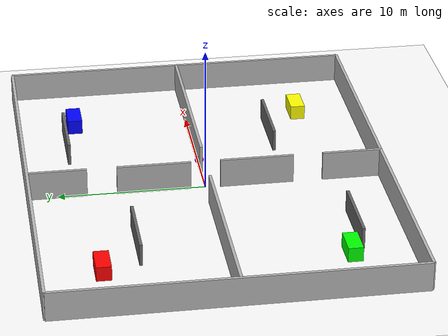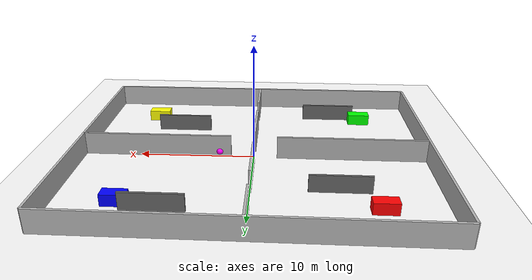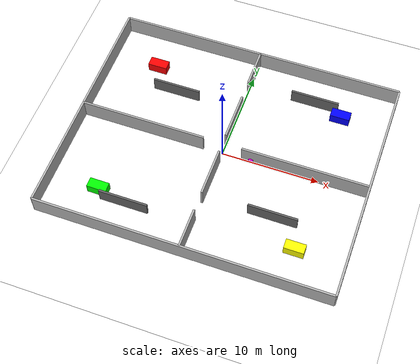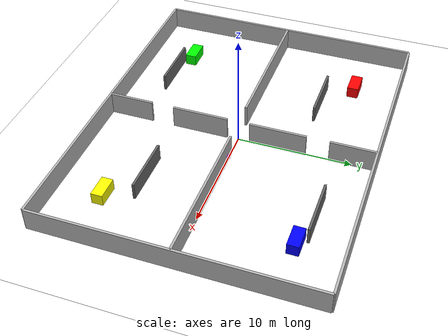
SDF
<sdf version="1.7">
 <world name="warehouse_world">
  <physics name="1ms" type="ignored">
   <max_step_size>0.005</max_step_size>
   <real_time_factor>1.0</real_time_factor>
  </physics>
  <plugin filename="gz-sim-physics-system" name="gz::sim::systems::Physics"/>
  <plugin filename="gz-sim-sensors-system" name="gz::sim::systems::Sensors">
   <render_engine>ogre2</render_engine>
  </plugin>
  <plugin filename="gz-sim-scene-broadcaster-system" name="gz::sim::systems::SceneBroadcaster"/>
  <plugin filename="gz-sim-user-commands-system" name="gz::sim::systems::UserCommands"/>
  <plugin filename="gz-sim-imu-system" name="gz::sim::systems::Imu"/>
  <include><uri>model://goal</uri><name>goal</name><pose>3 0 0.5 0 0 0</pose></include>
  <model name="white_floor">
   <static>true</static>
   <link name="floor_link">
    <collision name="collision">
     <geometry><plane><normal>0 0 1</normal><size>40 40</size></plane></geometry>
    </collision>
    <visual name="visual">
     <geometry><plane><normal>0 0 1</normal><size>40 40</size></plane></geometry>
     <material><ambient>1 1 1 1</ambient><diffuse>1 1 1 1</diffuse><specular>0.1 0.1 0.1 1</specular></material>
    </visual>
   </link>
  </model>
  <model name="wall_north">
   <static>true</static>
   <pose>0 12 1 0 0 0</pose>
   <link name="link">
    <collision name="collision"><geometry><box><size>30 0.2 2</size></box></geometry></collision>
    <visual name="visual"><geometry><box><size>30 0.2 2</size></box></geometry></visual>
   </link>
  </model>
  <model name="wall_south">
   <static>true</static>
   <pose>0 -12 1 0 0 0</pose>
   <link name="link">
    <collision name="collision"><geometry><box><size>30 0.2 2</size></box></geometry></collision>
    <visual name="visual"><geometry><box><size>30 0.2 2</size></box></geometry></visual>
   </link>
  </model>
  <model name="wall_east">
   <static>true</static>
   <pose>15 0 1 0 0 0</pose>
   <link name="link">
    <collision name="collision"><geometry><box><size>0.2 24 2</size></box></geometry></collision>
    <visual name="visual"><geometry><box><size>0.2 24 2</size></box></geometry></visual>
   </link>
  </model>
  <model name="wall_west">
   <static>true</static>
   <pose>-15 0 1 0 0 0</pose>
   <link name="link">
    <collision name="collision"><geometry><box><size>0.2 24 2</size></box></geometry></collision>
    <visual name="visual"><geometry><box><size>0.2 24 2</size></box></geometry></visual>
   </link>
  </model>
  <model name="mid_wall_left">
   <static>true</static>
   <pose>-8.5 0 1 0 0 0</pose>
   <link name="link">
    <collision name="collision"><geometry><box><size>13 0.2 2</size></box></geometry></collision>
    <visual name="visual">
     <geometry><box><size>13 0.2 2</size></box></geometry>
     <material><ambient>0.7 0.7 0.7 1</ambient><diffuse>0.7 0.7 0.7 1</diffuse></material>
    </visual>
   </link>
  </model>
  <model name="mid_wall_right">
   <static>true</static>
   <pose>8.5 0 1 0 0 0</pose>
   <link name="link">
    <collision name="collision"><geometry><box><size>13 0.2 2</size></box></geometry></collision>
    <visual name="visual">
     <geometry><box><size>13 0.2 2</size></box></geometry>
     <material><ambient>0.7 0.7 0.7 1</ambient><diffuse>0.7 0.7 0.7 1</diffuse></material>
    </visual>
   </link>
  </model>
  <model name="mid_vertical_top">
   <static>true</static>
   <pose>0 10 1 0 0 0</pose>
   <link name="link">
    <collision name="collision"><geometry><box><size>0.2 4 2</size></box></geometry></collision>
    <visual name="visual">
     <geometry><box><size>0.2 4 2</size></box></geometry>
     <material><ambient>0.7 0.7 0.7 1</ambient><diffuse>0.7 0.7 0.7 1</diffuse></material>
    </visual>
   </link>
  </model>
  <model name="mid_vertical_upper">
   <static>true</static>
   <pose>0 3.5 1 0 0 0</pose>
   <link name="link">
    <collision name="collision"><geometry><box><size>0.2 5 2</size></box></geometry></collision>
    <visual name="visual">
     <geometry><box><size>0.2 5 2</size></box></geometry>
     <material><ambient>0.7 0.7 0.7 1</ambient><diffuse>0.7 0.7 0.7 1</diffuse></material>
    </visual>
   </link>
  </model>
  <model name="mid_vertical_lower">
   <static>true</static>
   <pose>0 -3.5 1 0 0 0</pose>
   <link name="link">
    <collision name="collision"><geometry><box><size>0.2 5 2</size></box></geometry></collision>
    <visual name="visual">
     <geometry><box><size>0.2 5 2</size></box></geometry>
     <material><ambient>0.7 0.7 0.7 1</ambient><diffuse>0.7 0.7 0.7 1</diffuse></material>
    </visual>
   </link>
  </model>
  <model name="mid_vertical_bottom">
   <static>true</static>
   <pose>0 -10 1 0 0 0</pose>
   <link name="link">
    <collision name="collision"><geometry><box><size>0.2 4 2</size></box></geometry></collision>
    <visual name="visual">
     <geometry><box><size>0.2 4 2</size></box></geometry>
     <material><ambient>0.7 0.7 0.7 1</ambient><diffuse>0.7 0.7 0.7 1</diffuse></material>
    </visual>
   </link>
  </model>
  <model name="blocker_tl">
   <static>true</static>
   <pose>-7 5.5 0.75 0 0 0</pose>
   <link name="link">
    <collision name="collision"><geometry><box><size>5 0.2 1.5</size></box></geometry></collision>
    <visual name="visual">
     <geometry><box><size>5 0.2 1.5</size></box></geometry>
     <material><ambient>0.4 0.4 0.4 1</ambient><diffuse>0.4 0.4 0.4 1</diffuse></material>
    </visual>
   </link>
  </model>
  <model name="blocker_tr">
   <static>true</static>
   <pose>7 8.8 0.75 0 0 0</pose>
   <link name="link">
    <collision name="collision"><geometry><box><size>5 0.2 1.5</size></box></geometry></collision>
    <visual name="visual">
     <geometry><box><size>5 0.2 1.5</size></box></geometry>
     <material><ambient>0.4 0.4 0.4 1</ambient><diffuse>0.4 0.4 0.4 1</diffuse></material>
    </visual>
   </link>
  </model>
  <model name="blocker_bl">
   <static>true</static>
   <pose>-7 -8.8 0.75 0 0 0</pose>
   <link name="link">
    <collision name="collision"><geometry><box><size>5 0.2 1.5</size></box></geometry></collision>
    <visual name="visual">
     <geometry><box><size>5 0.2 1.5</size></box></geometry>
     <material><ambient>0.4 0.4 0.4 1</ambient><diffuse>0.4 0.4 0.4 1</diffuse></material>
    </visual>
   </link>
  </model>
  <model name="blocker_br">
   <static>true</static>
   <pose>7 -5.5 0.75 0 0 0</pose>
   <link name="link">
    <collision name="collision"><geometry><box><size>5 0.2 1.5</size></box></geometry></collision>
    <visual name="visual">
     <geometry><box><size>5 0.2 1.5</size></box></geometry>
     <material><ambient>0.4 0.4 0.4 1</ambient><diffuse>0.4 0.4 0.4 1</diffuse></material>
    </visual>
   </link>
  </model>
  <model name="shelf_red">
   <static>true</static>
   <pose>-10 8 0.5 0 0 0</pose>
   <link name="link">
    <collision name="collision"><geometry><box><size>2 1 1</size></box></geometry></collision>
    <visual name="visual">
     <geometry><box><size>2 1 1</size></box></geometry>
     <material><ambient>1 0 0 1</ambient><diffuse>1 0 0 1</diffuse></material>
    </visual>
   </link>
  </model>
  <model name="shelf_blue">
   <static>true</static>
   <pose>10 8 0.5 0 0 0</pose>
   <link name="link">
    <collision name="collision"><geometry><box><size>2 1 1</size></box></geometry></collision>
    <visual name="visual">
     <geometry><box><size>2 1 1</size></box></geometry>
     <material><ambient>0 0 1 1</ambient><diffuse>0 0 1 1</diffuse></material>
    </visual>
   </link>
  </model>
  <model name="shelf_green">
   <static>true</static>
   <pose>-10 -8 0.5 0 0 0</pose>
   <link name="link">
    <collision name="collision"><geometry><box><size>2 1 1</size></box></geometry></collision>
    <visual name="visual">
     <geometry><box><size>2 1 1</size></box></geometry>
     <material><ambient>0 1 0 1</ambient><diffuse>0 1 0 1</diffuse></material>
    </visual>
   </link>
  </model>
  <model name="shelf_yellow">
   <static>true</static>
   <pose>10 -8 0.5 0 0 0</pose>
   <link name="link">
    <collision name="collision"><geometry><box><size>2 1 1</size></box></geometry></collision>
    <visual name="visual">
     <geometry><box><size>2 1 1</size></box></geometry>
     <material><ambient>1 1 0 1</ambient><diffuse>1 1 0 1</diffuse></material>
    </visual>
   </link>
  </model>
 </world>
</sdf>

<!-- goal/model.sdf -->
<sdf version="1.6">
  <model name="goal">
    <pose frame=''>0 0 0.5 0 0 0</pose>

    <plugin filename="gz-sim-label-system" name="gz::sim::systems::Label">
      <label>1</label>
    </plugin>

    <link name="link">
      <visual name="visual">
        <geometry>
          <sphere>
            <radius>0.3</radius>
          </sphere>
        </geometry>
        <material>
          <ambient>1 0 1</ambient>
          <diffuse>1 0 1</diffuse>
          <specular>0.1 0.1 0.1 1</specular>
          <emissive>0 0 0 1</emissive>
        </material>
      </visual>
      <self_collide>0</self_collide>
      <kinematic>0</kinematic>
      <gravity>0</gravity>
    </link>
  </model>
</sdf>
